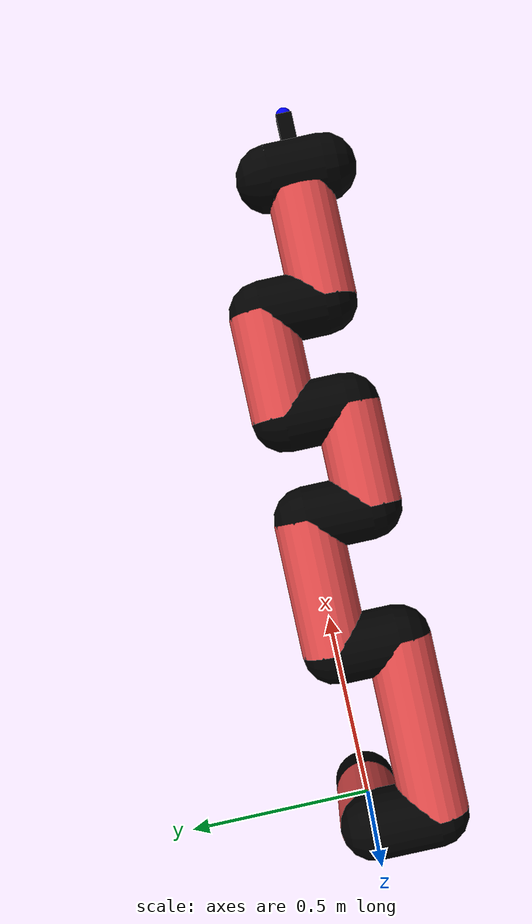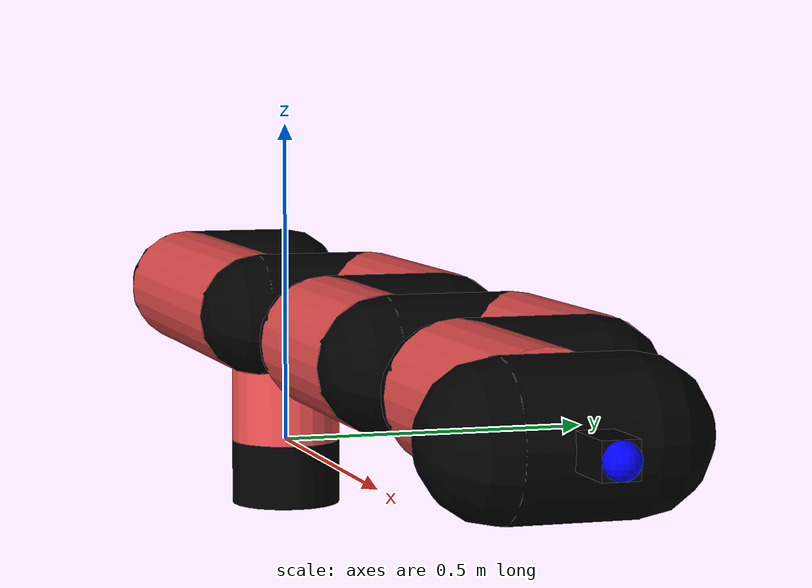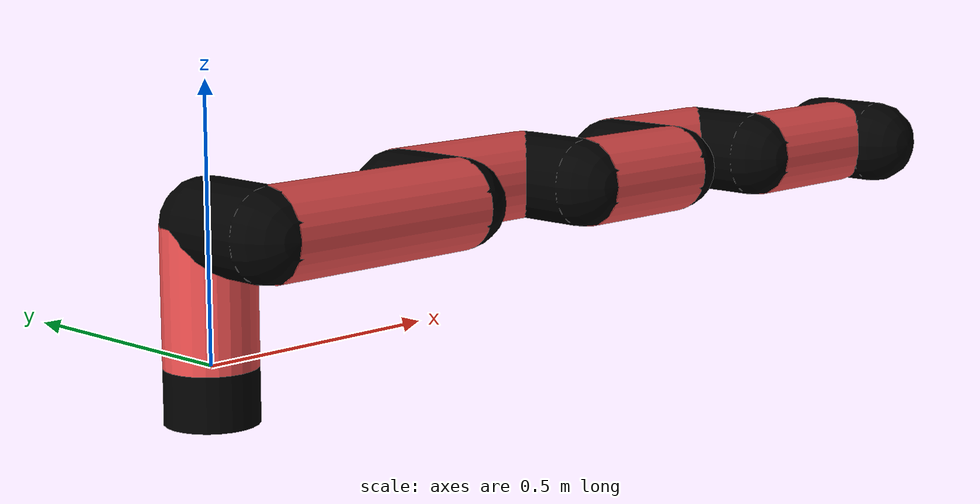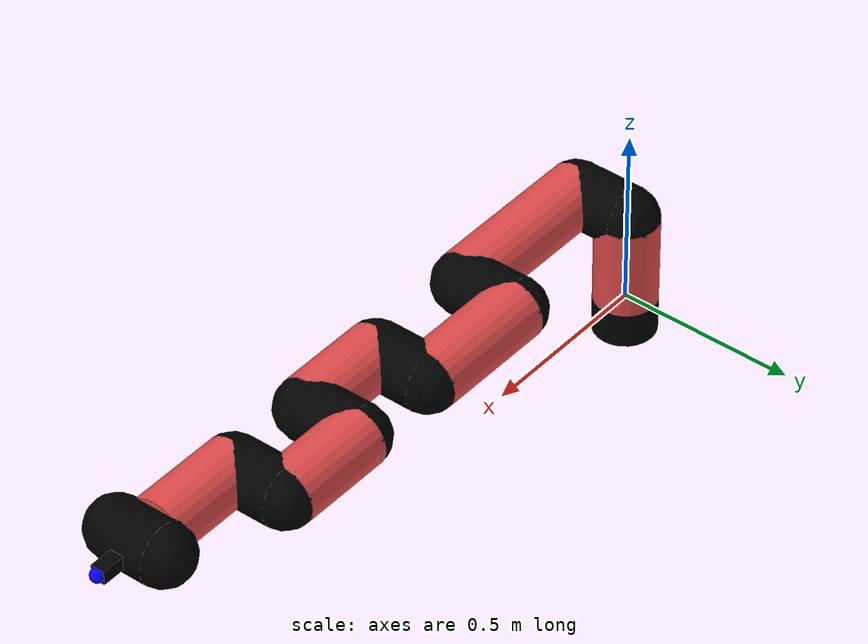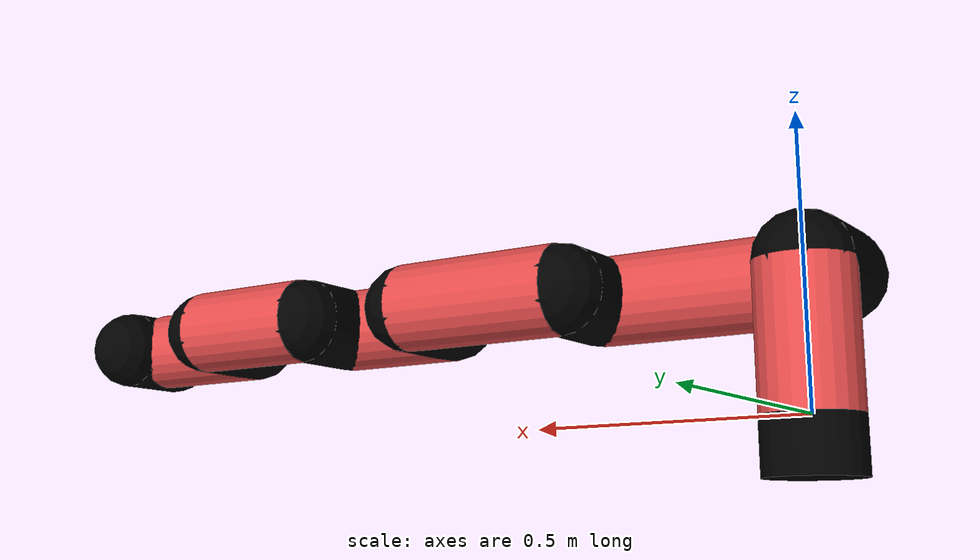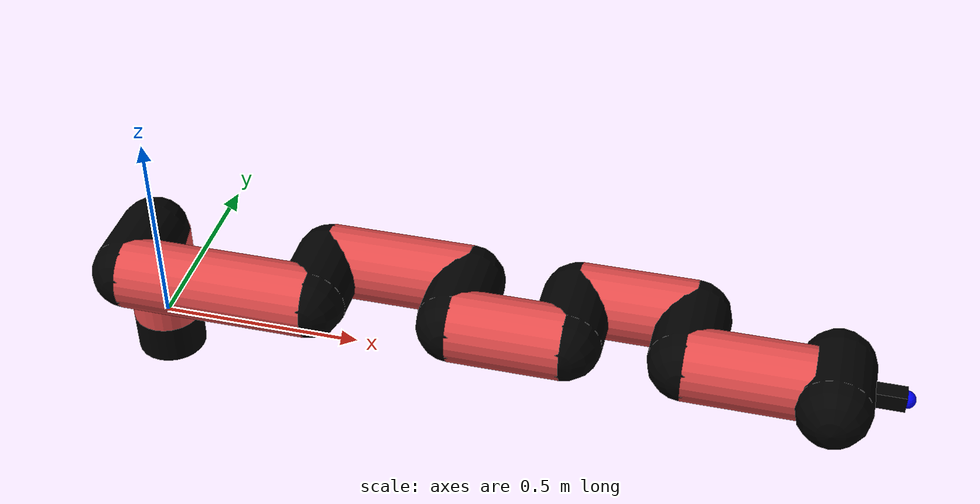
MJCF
<mujoco model="manipulator">
		<compiler angle="degree" coordinate="local" inertiafromgeom="auto" meshdir="meshes/"/>
		<option gravity="0 0 0" integrator="RK4" iterations="30" timestep="0.01"/>

		<default>
		<joint armature="1" limited="true" stiffness="10" damping="15" frictionloss="5.0"/>
		<geom conaffinity="1" condim="3" contype="1" friction=".5 .1 .1" margin="0.002"/>
		<motor ctrllimited="true"/>
		<position ctrllimited="true"/>
		</default>

		<asset>
		<texture builtin="gradient" height="100" rgb1="1.0 1.0 1.0" rgb2="1.0 1.0 1.0" type="skybox" width="100"/>
		<texture builtin="flat" height="32" name="arm_tex" rgb1="0.9 0.3 0.3" type="2d" width="32"/>
		<texture builtin="flat" height="32" name="gripper_tex" rgb1="0.0 0.0 0.0" type="cube" width="32"/>

		<material name="arm_mat" shininess="0.1" specular="0.1" texture="arm_tex"/>
		<material name="gripper_mat" shininess="1" specular="1" texture="gripper_tex"/>
		</asset>

		<worldbody>
		<light cutoff="45" diffuse=".8 .8 .8" dir="0 0.16 -1" directional="false" name="light" pos="0 -2.0 8.0" specular="0.3 0.3 0.3"/>

		<body name="base_link" pos="0 0 -0.1">
		<geom fromto="0 0 0 0 0 0.1" material="arm_mat" name="base_link" rgba="0.0 0.0 0.0 1" size="0.085" type="cylinder"/>
		</body>

		<body name="l1" pos="0 0 0">
<geom fromto="0 0 0 0 0 0.25" material="arm_mat" name="l1" rgba="0.9 0.3 0.3 1" size="0.085" type="cylinder"/>
<geom fromto="0 0 0.25 0 -0.16 0.25" material="arm_mat" name="l1_ex" rgba="0.0 0.0 0.0 1" size="0.085" type="capsule"/>
<joint axis="0 0 1" name="j1" pos="0 0 0" range="-90 90" damping="22.86" frictionloss="8.95"/>

<body name="l2" pos="0 -0.16 0.25">
<geom fromto="0 0 0 0.45 0 0" material="arm_mat" name="l2" rgba="0.9 0.3 0.3 1" size="0.085" type="cylinder"/>
<geom fromto="0.45 0 0 0.45 0.16 0" material="arm_mat" name="l2_ex" rgba="0.0 0.0 0.0 1" size="0.085" type="capsule"/>
<joint axis="0.0 1.0 0.0" name="j2" pos="0 0 0" range="-90 60" damping="25.06" frictionloss="8.99"/>

<body name="l3" pos="0.45 0.16 0">
<geom fromto="0 0 0 0.34 0 0" material="arm_mat" name="l3" rgba="0.9 0.3 0.3 1" size="0.085" type="cylinder"/>
<geom fromto="0.34 0 0 0.34 -0.16 0" material="arm_mat" name="l3_ex" rgba="0.0 0.0 0.0 1" size="0.085" type="capsule"/>
<joint axis="0.0 1.0 0.0" name="j3" pos="0 0 0" range="-30 60" damping="32.51" frictionloss="11.83"/>

<body name="l4" pos="0.34 -0.16 0">
<geom fromto="0 0 0 0.26 0 0" material="arm_mat" name="l4" rgba="0.9 0.3 0.3 1" size="0.085" type="cylinder"/>
<geom fromto="0.26 0 0 0.26 0.16 0" material="arm_mat" name="l4_ex" rgba="0.0 0.0 0.0 1" size="0.085" type="capsule"/>
<joint axis="0.0 1.0 0.0" name="j4" pos="0 0 0" range="-30 60" damping="25.42" frictionloss="7.76"/>

<body name="l5" pos="0.26 0.16 0">
<geom fromto="0 0 0 0.27 0 0" material="arm_mat" name="l5" rgba="0.9 0.3 0.3 1" size="0.085" type="cylinder"/>
<geom fromto="0.27 0 0 0.27 -0.16 0" material="arm_mat" name="l5_ex" rgba="0.0 0.0 0.0 1" size="0.085" type="capsule"/>
<joint axis="0.0 1.0 0.0" name="j5" pos="0 0 0" range="-30 60" damping="27.85" frictionloss="9.42"/>

<body name="l6" pos="0.27 -0.16 0">
<geom fromto="0 0 0 0.28 0 0" material="arm_mat" name="l6" rgba="0.9 0.3 0.3 1" size="0.085" type="cylinder"/>
<joint axis="0.0 1.0 0.0" name="j6" pos="0 0 0" range="-30 60" damping="24.86" frictionloss="8.27"/>

<body name="gripper" pos="0.28 0 0">
<geom fromto="0.05 -0.07 0 0.05 0.07 0" material="gripper_mat" name="gripper" rgba="0.0 0.0 0.0 1" size="0.085" type="capsule"/><joint axis="1 0 0" name="j7" pos="0 0 0" range="-90 90" damping="15" frictionloss="5.0"/><body name="finger" pos="0.1 0 0">
<geom fromto="0 0.0 0 0.1 0.0 0" material="gripper_mat" name="finger" rgba="0.0 0.0 0.0 1" size="0.020 0.06 0.06" type="box"/>
</body>
<site name="current" pos="0.2 0. 0.0" rgba="0. 0. 1.0 1" size="0.02" type="sphere"/>
</body>
</body>
</body>
</body>
</body>
</body>
</body>
</worldbody>
<actuator>
<motor ctrllimited="true" ctrlrange="-1.0 1.0" joint="j1" gear="95.89"/>
<motor ctrllimited="true" ctrlrange="-1.0 1.0" joint="j2" gear="80.34"/>
<motor ctrllimited="true" ctrlrange="-1.0 1.0" joint="j3" gear="77.94"/>
<motor ctrllimited="true" ctrlrange="-1.0 1.0" joint="j4" gear="84.24"/>
<motor ctrllimited="true" ctrlrange="-1.0 1.0" joint="j5" gear="61.77"/>
<motor ctrllimited="true" ctrlrange="-1.0 1.0" joint="j6" gear="95.83"/>
<motor ctrllimited="true" ctrlrange="-1.0 1.0" joint="j7" gear="80"/>
</actuator>
</mujoco>
